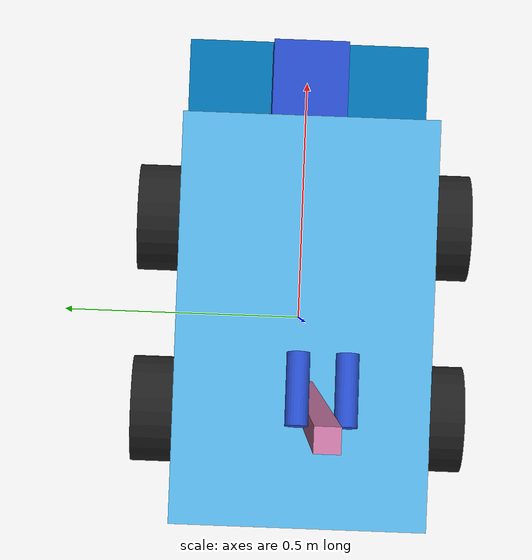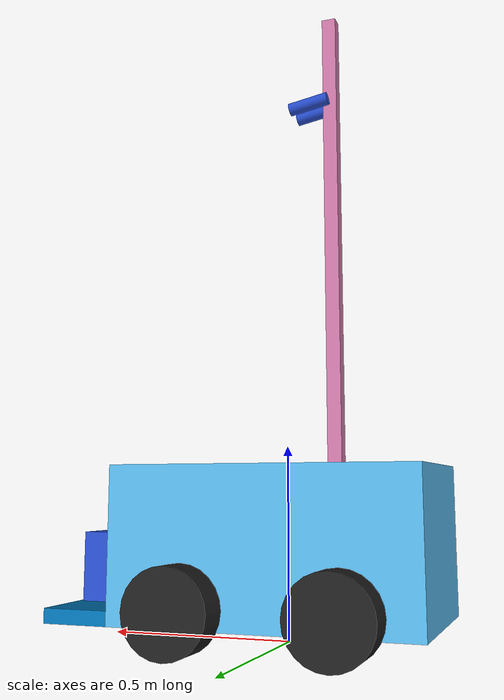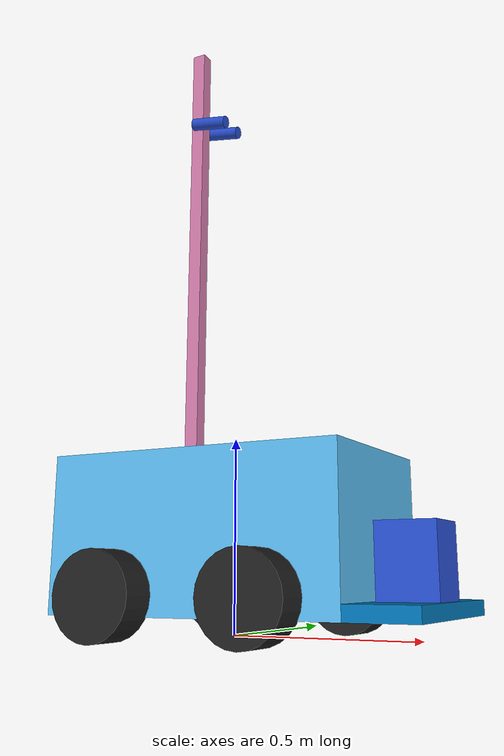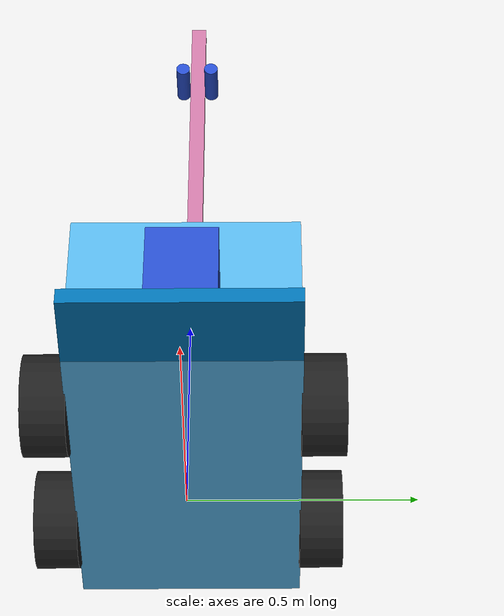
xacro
<?xml version="1.0"?>

<robot name="mcp"
    xmlns:sensor="http://playerstage.sourceforge.net/gazebo/xmlschema/#sensor"
    xmlns:controller="http://playerstage.sourceforge.net/gazebo/xmlschema/#controller"
    xmlns:interface="http://playerstage.sourceforge.net/gazebo/xmlschema/#interface">

    <!-- Included URDF Files -->
    <include filename="$(find uml_igvc_gazebo)/Media/urdf/mcp_base.urdf.xacro" />

    <mcp/>
</robot>

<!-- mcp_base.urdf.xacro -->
<robot xmlns:sensor="http://playerstage.sourceforge.net/gazebo/xmlschema/#sensor"
       xmlns:controller="http://playerstage.sourceforge.net/gazebo/xmlschema/#controller"
       xmlns:interface="http://playerstage.sourceforge.net/gazebo/xmlschema/#interface">

  <!-- Included URDF Files -->
  <include filename="$(find uml_igvc_gazebo)/Media/urdf/materials.urdf.xacro"/>
  <include filename="$(find uml_igvc_gazebo)/Media/urdf/mcp_wheel.urdf.xacro"/>
  <include filename="$(find uml_igvc_gazebo)/Media/urdf/mcp_mast.urdf.xacro"/>
  <include filename="$(find uml_igvc_gazebo)/Media/urdf/mcp_laser.urdf.xacro"/>

  <!-- Properties (Constants) -->
  <property name="M_PI" value="3.14159"/>

  <property name="body_y" value="0.5"/>
  <property name="body_x" value="0.8"/>
  <property name="body_z" value="0.4"/>

  <property name="wheel_length" value="0.096"/>

  <property name="body_mass" value="200.0"/>  <!-- mass in kilograms, assumeing 300lb body -->

  <macro name="mcp">
    <link name="base_footprint">
      <inertial>
        <mass value="0.0001" />
        <origin xyz="0 0 0" />
        <inertia ixx="0.0001" ixy="0.0" ixz="0.0"
                 iyy="0.0001" iyz="0.0"
                 izz="0.0001" />
      </inertial>

      <visual>
        <origin xyz="0 0 0" rpy="0 0 0" />
        <geometry>
          <box size="0.001 0.001 0.001" />
        </geometry>
        <material name="Green"/>
      </visual>

      <collision>
        <origin xyz="0 0 ${body_z/2 + 0.051}" rpy="0 0 0" />
        <geometry>
          <box size="0.001 0.001 0.001" />
        </geometry>
      </collision>
    </link>
    <joint name="base_footprint_joint" type="fixed">
      <origin xyz="0 0 ${body_z/2 + 0.051}" rpy="0 0 0" />
      <parent link="base_footprint"/>
      <child link="base_link" />
    </joint>

    <!-- Links and Joints (i.e., the robot) -->
    <link name="base_link">
      <visual>
        <geometry>
          <box size="${body_x} ${body_y} ${body_z}"/>
        </geometry>
      </visual>
      <inertial>
        <mass value="${body_mass}"/>
        <inertia ixx="1.0" ixy="0.0" ixz="0.0"
                 iyy="1.0" iyz="0.0"
                 izz="1.0"/>
      </inertial>
      <collision>
        <geometry>
          <box size="${body_x} ${body_y} ${body_z}"/>
        </geometry>
      </collision>
    </link>
    <!-- MACRO INSTANTIATION -->

    <mcp_wheel suffix="right_rear" parent="base_link" shift_y="-0.295" shift_x="-0.2"/>
    <mcp_wheel suffix="left_front" parent="base_link" shift_y="0.295" shift_x="0.2"/>
    <mcp_wheel suffix="right_front" parent="base_link" shift_y="-0.295" shift_x="0.2"/>
    <mcp_wheel suffix="left_rear" parent="base_link" shift_y="0.295" shift_x="-0.2"/>
    <mcp_mast parent="base_link"/>
    <mcp_laser parent="base_link"/>

    <!-- CONTROLLERS -->
    <gazebo>
      <controller:diffdrive_quad name="differential_drive_controller" plugin="libdiffdrive_quad.so">
        <alwaysOn>true</alwaysOn>
        <update>100</update>
        <updateRate>10</updateRate>
        <leftJoint>base_link_right_front_wheel_joint</leftJoint>
        <rightJoint>base_link_left_front_wheel_joint</rightJoint>
        <leftRearJoint>base_link_right_rear_wheel_joint</leftRearJoint>
        <rightRearJoint>base_link_left_rear_wheel_joint</rightRearJoint>
        <wheelSeparation>${body_x}</wheelSeparation>
        <wheelDiameter>${wheel_radius*2}</wheelDiameter>
        <torque>1000</torque>
        <interface:position name="position_iface_0"/>
        <robotNamespace>robot</robotNamespace>
        <topicName>cmd_vel</topicName>
      </controller:diffdrive_quad>
    </gazebo>

    <!-- GAZEBO MATERIALS -->
    <gazebo reference="base_link">
      <material>Gazebo/BumpyMetal</material>
    </gazebo>

  </macro>
</robot>

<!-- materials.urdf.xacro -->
<robot>
  <material name="Black">
    <color rgba="0.0 0.0 0.0 1.0"/>
  </material>

  <material name="Blue">
    <color rgba="0.0 0.0 0.8 1.0"/>
  </material>

  <material name="Green">
    <color rgba="0.0 0.8 0.0 1.0"/>
  </material>

  <material name="Grey">
    <color rgba="0.7 0.7 0.7 1.0"/>
  </material>

  <material name="Grey2">
    <color rgba="0.9 0.9 0.9 1.0"/>
  </material>

  <material name="Red">
    <color rgba="0.8 0.0 0.0 1.0"/>
  </material>

  <material name="White">
    <color rgba="1.0 1.0 1.0 1.0"/>
  </material>
</robot>

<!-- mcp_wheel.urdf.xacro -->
<robot
    xmlns:sensor="http://playerstage.sourceforge.net/gazebo/xmlschema/#sensor"
    xmlns:controller="http://playerstage.sourceforge.net/gazebo/xmlschema/#controller"
    xmlns:interface="http://playerstage.sourceforge.net/gazebo/xmlschema/#interface">

  <!-- Properties (Constants) -->
  <property name="M_PI" value="3.14159"/>
  <property name="wheel_radius" value="0.11"/>
  <property name="wheel_length" value="0.096"/>
  <property name="wheel_mass" value="2.26796185"/> <!--assuming 5lbs -->

  <macro name="mcp_wheel" params="suffix parent shift_x shift_y">

    <joint name="${parent}_${suffix}_wheel_joint" type="continuous">
      <origin xyz="${shift_x} ${shift_y} -0.15" rpy="0 0 0"/>
      <axis xyz="0 1 0" />
      <parent link="${parent}" />
      <child link="${parent}_${suffix}_wheel_link" />
    </joint>

    <link name="${parent}_${suffix}_wheel_link">
      <visual>
        <origin xyz="0 0 0" rpy="${M_PI/2} 0 0"/>
        <geometry>
          <cylinder length="${wheel_length}" radius="${wheel_radius}"/>
        </geometry>
      </visual>

      <inertial>
        <mass value="${wheel_mass}"/>
        <inertia ixx="1.0" ixy="0.0" ixz="0.0" iyy="1.0" iyz="0.0" izz="1.0"/>
      </inertial>

      <collision>
        <origin rpy="${M_PI/2} 0 0" xyz="0 0 0"/>
        <geometry>
          <cylinder length="${wheel_length}" radius="${wheel_radius}"/>
        </geometry>
      </collision>
    </link>

    <gazebo reference="${parent}_${suffix}_wheel_link" >
      <mu1>35.0</mu1>
      <mu2>35.0</mu2>
      <kp>1000000000.0</kp>
      <kd>1.0</kd>
      <material>Gazebo/Black</material>
    </gazebo>
  </macro>
</robot>

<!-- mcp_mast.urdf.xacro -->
<robot
    xmlns:sensor="http://playerstage.sourceforge.net/gazebo/xmlschema/#sensor"
    xmlns:controller="http://playerstage.sourceforge.net/gazebo/xmlschema/#controller"
    xmlns:interface="http://playerstage.sourceforge.net/gazebo/xmlschema/#interface">

  <!-- Included URDF Files -->
  <include filename="$(find uml_igvc_gazebo)/Media/urdf/mcp_left_camera.urdf.xacro"/>
  <include filename="$(find uml_igvc_gazebo)/Media/urdf/mcp_right_camera.urdf.xacro"/>

  <!-- Properties (Constants) -->
  <property name="mast_base" value="0.0381"/>
  <property name="mast_height" value="1.25"/>

  <property name="mast_mass" value="4.5359237"/> <!--90.72 assuming 10lbs -->

  <macro name="mcp_mast" params="parent">
    <joint name="mast_joint" type="fixed">
      <parent link="${parent}"/>
      <child link="mast"/>
      <origin xyz="-0.13335 0 ${mast_height/2 + body_z/2}"/>
    </joint>

    <link name="mast">
      <visual>
        <origin xyz="0 0 0"/>
        <geometry>
          <box size="${mast_base} ${mast_base} ${mast_height}"/>
        </geometry>
      </visual>
      <inertial>
        <mass value="${mast_mass}"/>
        <inertia ixx="1.0" ixy="0.0" ixz="0.0" iyy="1.0" iyz="0.0" izz="1.0"/>
      </inertial>
      <collision>
        <geometry>
          <box size="${mast_base} ${mast_base} ${mast_height}"/>
        </geometry>
      </collision>
    </link>

    <joint name="optical_frame_joint" type="fixed">
      <origin xyz="${camera_length/2} 0 ${mast_height/2 - 0.254}" rpy="${-M_PI/2 - camera_tilt} 0.0 ${-M_PI/2}" /> <!-- rotate frame from x-forward to z-forward camera coords -->
      <parent link="mast"/>
      <child link="optical_frame"/>
    </joint>

    <!-- optical frame for the stereo camera, with z-forward notation, this is the frame stereo camera images users should refer to -->
    <link name="optical_frame" type="camera"/>

    <!-- MACRO INSTANTIATION -->
    <mcp_left_camera parent="mast" reflect="1" suffix="left" />
    <mcp_right_camera parent="mast" reflect="-1" suffix="right" />

    <gazebo reference="mast">
      <material>Gazebo/BumpyMetal</material>
    </gazebo>
  </macro>
</robot>

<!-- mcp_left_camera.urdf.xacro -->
<robot
    xmlns:sensor="http://playerstage.sourceforge.net/gazebo/xmlschema/#sensor"
    xmlns:controller="http://playerstage.sourceforge.net/gazebo/xmlschema/#controller"
    xmlns:interface="http://playerstage.sourceforge.net/gazebo/xmlschema/#interface">

  <!-- Properties (Constants) -->
  <property name="camera_length" value="0.11"/>
  <property name="camera_radius" value="0.0174625"/>
  <property name="M_PI" value="3.14159"/>
  <property name="camera_tilt" value="0.17"/>

  <macro name="mcp_left_camera" params="parent reflect suffix">
    <joint name="${parent}_${suffix}_camera_joint" type="fixed">
      <parent link="${parent}" />
      <child link="${parent}_${suffix}_camera"/>
      <origin xyz="${camera_length/2} ${reflect * mast_base/2 +  reflect * camera_radius} ${mast_height/2 - 0.254}" rpy="0 ${M_PI / 2 + camera_tilt} 0" />
    </joint>

    <link name="${parent}_${suffix}_camera">
      <visual>
        <origin xyz="0 0 0" rpy="0 0 0"/>
        <geometry>
          <cylinder length="${camera_length}" radius="${camera_radius}"/>
        </geometry>
      </visual>
      <inertial>
        <mass value="0.01" />
        <origin xyz="0 0 0" />
        <inertia ixx="0.001"  ixy="0.0"  ixz="0.0" iyy="0.001" iyz="0.0" izz="0.001" />
      </inertial>
      <collision>
        <geometry>
          <cylinder length="${camera_length}" radius="${camera_radius}"/>
        </geometry>
      </collision>
    </link>

    <link name="${parent}_${suffix}_camera_frame">
      <inertial>
        <mass value="0.01" />
        <origin xyz="0 0 0" />
        <inertia ixx="0.001"  ixy="0.0"  ixz="0.0" iyy="0.001"  iyz="0.0" izz="0.001" />
      </inertial>
      <visual>
        <origin xyz="0 0 0" rpy="0 0 0"/>
        <geometry>
          <box size="0.001 0.001 0.001" />
        </geometry>
      </visual>
      <collision>
        <origin xyz="0 0 0" rpy="0 0 0"/>
        <geometry>
          <box size="0.001 0.001 0.001" />
        </geometry>
      </collision>
    </link>

    <joint name="${parent}_${suffix}_camera_optical_joint" type="fixed">
      <origin xyz="0 0 0" rpy="0 ${-M_PI/2} 0" />
      <parent link="${parent}_${suffix}_camera" />
      <child link="${parent}_${suffix}_camera_frame"/>
    </joint>

    <gazebo reference="${parent}_${suffix}_camera_frame" >
      <sensor:camera name="${suffix}_camera_sensor">
        <imageSize>640 480</imageSize>
        <imageFormat>R8G8B8</imageFormat>
        <hfov>75</hfov>
        <nearClip>0.01</nearClip>
        <farClip>100</farClip>
        <updateRate>10.0</updateRate>
        <controller:gazebo_ros_camera name="camera_controller" plugin="libgazebo_ros_camera.so">
          <alwaysOn>true</alwaysOn>
          <updateRate>10.0</updateRate>
          <imageTopicName>/robot/${suffix}/image_raw</imageTopicName>
          <cameraInfoTopicName>/robot/${suffix}/camera_info</cameraInfoTopicName>
          <frameName>optical_frame</frameName>
          <hackBaseline>0.0</hackBaseline>
          <turnGravityOff value="true" />
          <interface:camera name="${suffix}_camera_iface" />
        </controller:gazebo_ros_camera>
      </sensor:camera>
    </gazebo>

    <gazebo reference="${parent}_${suffix}_camera">
      <material>Gazebo/Blue</material>
      <turnGravityOff value="true" />
    </gazebo>

  </macro>
</robot>

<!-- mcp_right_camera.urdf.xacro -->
<robot
    xmlns:sensor="http://playerstage.sourceforge.net/gazebo/xmlschema/#sensor"
    xmlns:controller="http://playerstage.sourceforge.net/gazebo/xmlschema/#controller"
    xmlns:interface="http://playerstage.sourceforge.net/gazebo/xmlschema/#interface">

  <!-- Properties (Constants) -->
  <property name="camera_length" value="0.11"/>
  <property name="camera_radius" value="0.0174625"/>
  <property name="M_PI" value="3.14159"/>
  <property name="camera_tilt" value="0.17"/>

  <macro name="mcp_right_camera" params="parent reflect suffix">
    <joint name="${parent}_${suffix}_camera_joint" type="fixed">
      <parent link="${parent}" />
      <child link="${parent}_${suffix}_camera"/>
	<origin xyz="${camera_length/2} ${reflect * mast_base/2 +  reflect * camera_radius} ${mast_height/2 - 0.254}" rpy="0 ${M_PI / 2 + camera_tilt} 0" />
    </joint>

    <link name="${parent}_${suffix}_camera">
      <visual>
        <origin xyz="0 0 0" rpy="0 0 0"/>
        <geometry>
          <cylinder length="${camera_length}" radius="${camera_radius}"/>
        </geometry>
      </visual>
      <inertial>
        <mass value="0.01" />
        <origin xyz="0 0 0" />
        <inertia ixx="0.001"  ixy="0.0"  ixz="0.0" iyy="0.001" iyz="0.0" izz="0.001" />
      </inertial>
      <collision>
        <geometry>
          <cylinder length="${camera_length}" radius="${camera_radius}"/>
        </geometry>
      </collision>
    </link>

    <link name="${parent}_${suffix}_camera_frame">
      <inertial>
        <mass value="0.01" />
        <origin xyz="0 0 0" />
        <inertia ixx="0.001"  ixy="0.0"  ixz="0.0" iyy="0.001"  iyz="0.0" izz="0.001" />
      </inertial>
      <visual>
        <origin xyz="0 0 0" rpy="0 0 0"/>
        <geometry>
          <box size="0.001 0.001 0.001" />
        </geometry>
      </visual>
      <collision>
        <origin xyz="0 0 0" rpy="0 0 0"/>
        <geometry>
          <box size="0.001 0.001 0.001" />
        </geometry>
      </collision>
    </link>

    <joint name="${parent}_${suffix}_camera_optical_joint" type="fixed">
      <origin xyz="0 0 0" rpy="0 ${-M_PI/2} 0" />
      <parent link="${parent}_${suffix}_camera" />
      <child link="${parent}_${suffix}_camera_frame"/>
    </joint>

    <gazebo reference="${parent}_${suffix}_camera_frame" >
      <sensor:camera name="{suffix}_camera_sensor">
        <imageSize>640 480</imageSize>
        <imageFormat>R8G8B8</imageFormat>
        <hfov>75</hfov>
        <nearClip>0.01</nearClip>
        <farClip>100</farClip>
        <updateRate>10.0</updateRate>
        <controller:gazebo_ros_camera name="camera_controller" plugin="libgazebo_ros_camera.so">
          <alwaysOn>true</alwaysOn>
          <updateRate>10.0</updateRate>
          <imageTopicName>/robot/${suffix}/image_raw</imageTopicName>
          <cameraInfoTopicName>/robot/${suffix}/camera_info</cameraInfoTopicName>
          <frameName>optical_frame</frameName>
          <hackBaseline>${mast_base + camera_radius * 2}</hackBaseline>
          <turnGravityOff value="true" />
          <interface:camera name="${suffix}_camera_iface" />
        </controller:gazebo_ros_camera>
      </sensor:camera>
    </gazebo>

    <gazebo reference="${parent}_${suffix}_camera">
      <material>Gazebo/Blue</material>
      <turnGravityOff value="true" />
    </gazebo>

  </macro>
</robot>

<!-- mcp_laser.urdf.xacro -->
<robot
    xmlns:sensor="http://playerstage.sourceforge.net/gazebo/xmlschema/#sensor"
    xmlns:controller="http://playerstage.sourceforge.net/gazebo/xmlschema/#controller"
    xmlns:interface="http://playerstage.sourceforge.net/gazebo/xmlschema/#interface">

  <!-- Properties (Constants) -->
  <property name="laser_base_mass" value="4.5359237"/> <!-- assuming 10lbs -->

  <property name="laser_base" value="0.1524"/>
  <property name="laser_height" value="0.18415"/>

  <property name="laser_base_y" value="0.5"/>
  <property name="laser_base_x" value="0.1778"/>
  <property name="laser_base_z" value="0.0381"/>

  <macro name="mcp_laser" params="parent">
    <joint name="laser_base_joint" type="fixed">
      <parent link="${parent}"/>
      <child link="laser_base"/>
      <origin xyz="0.4889 0 -0.18095"/>
    </joint>

    <link name="laser_base">
      <visual>
        <origin xyz="0 0 0"/>
        <geometry>
          <box size="${laser_base_x} ${laser_base_y} ${laser_base_z}"/>
        </geometry>
      </visual>
      <inertial>
        <mass value="${laser_base_mass}"/>
        <inertia ixx="1.0" ixy="0.0" ixz="0.0" iyy="1.0" iyz="0.0" izz="1.0"/>
      </inertial>
      <collision>
        <geometry>
          <box size="${laser_base_x} ${laser_base_y} ${laser_base_z}"/>
        </geometry>
      </collision>
    </link>

    <joint name="laser_joint" type="fixed">
      <parent link="laser_base"/>
      <child link="laser"/>
      <origin xyz="0 0 ${laser_height/2 + laser_base_z/2}"/>
    </joint>

    <link name="laser">
      <visual>
        <origin xyz="0 0 0"/>
        <geometry>
          <box size="${laser_base} ${laser_base} ${laser_height}"/>
        </geometry>
      </visual>
      <inertial>
        <mass value="1.0"/>
        <inertia ixx="1.0" ixy="0.0" ixz="0.0" iyy="1.0" iyz="0.0" izz="1.0"/>
      </inertial>
      <collision>
        <geometry>
          <box size="${laser_base} ${laser_base} ${laser_height}"/>
        </geometry>
      </collision>
    </link>

    <joint name="laser_frame_joint" type="fixed">
      <origin xyz="${laser_base/2} 0 0" rpy="0 0 0" />
      <parent link="laser" />
      <child link="laser_frame"/>
    </joint>

    <link name="laser_frame">
      <inertial>
        <mass value="0.01" />
        <inertia ixx="0.001"  ixy="0.0"  ixz="0.0" iyy="0.001"  iyz="0.0" izz="0.001" />
      </inertial>
      <visual>
        <geometry>
          <box size="0.0001 0.0001 0.0001" />
        </geometry>
      </visual>
      <collision>
        <geometry>
          <box size="0.0001 0.0001 0.0001" />
        </geometry>
      </collision>
    </link>

    <gazebo reference="laser_frame">
      <sensor:ray name="laser">
        <rayCount>180</rayCount>
        <rangeCount>180</rangeCount>
        <laserCount>1</laserCount>

        <displayRays>true</displayRays>

        <minAngle>-90</minAngle>
        <maxAngle>90</maxAngle>

        <minRange>0.08</minRange>
        <maxRange>16.0</maxRange>
        <resRange>0.01</resRange>
        <updateRate>10</updateRate>

        <controller:gazebo_ros_laser name="ros_ray_sensor_controller" plugin="libgazebo_ros_laser.so">
          <gaussianNoise>0.005</gaussianNoise>
          <alwaysOn>true</alwaysOn>
          <updateRate>10</updateRate>
          <topicName>/robot/base_scan</topicName>
          <frameName>/laser_frame</frameName>
          <interface:laser name="ros_ray_sensor_iface" />
        </controller:gazebo_ros_laser>
      </sensor:ray>
    </gazebo>

    <gazebo reference="laser">
      <material>Gazebo/Blue</material>
    </gazebo>
    <gazebo reference="laser_base">
      <material>Gazebo/BumpyMetal</material>
    </gazebo>
  </macro>
</robot>
